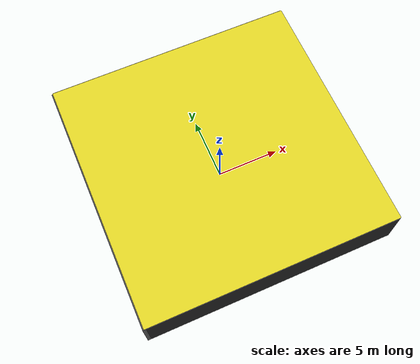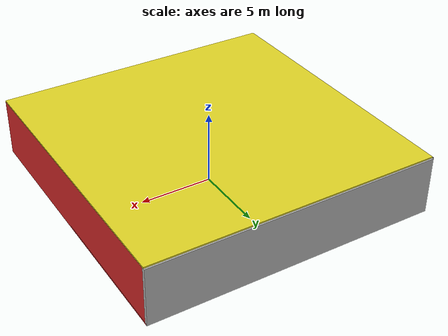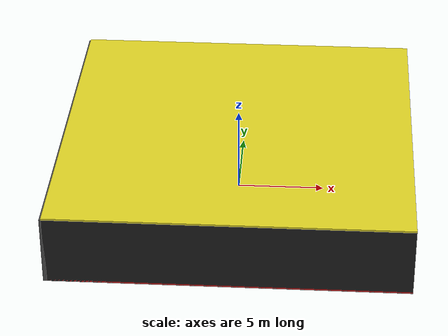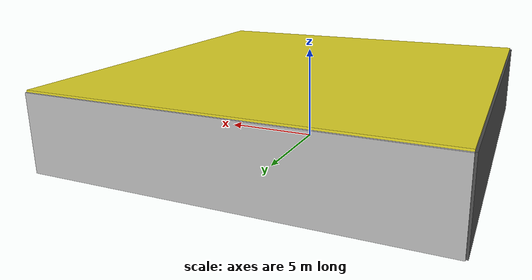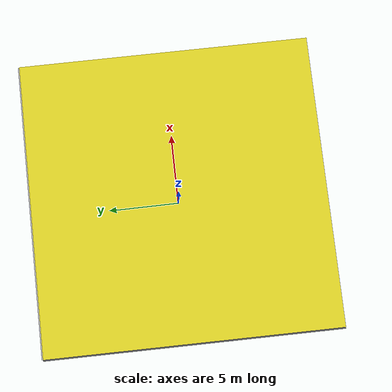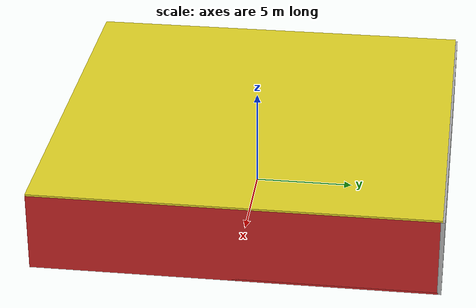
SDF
<sdf version="1.4">
 <world name="default">
  <physics type="ode">
   <max_step_size>0.001</max_step_size>
   <real_time_factor>1</real_time_factor>
   <real_time_update_rate>1000</real_time_update_rate>
   <gravity>0 0 -9.8</gravity>
  </physics>
  <scene><ambient>0.4 0.4 0.4 1</ambient><background>0.7 0.7 0.7 1</background><shadows>1</shadows></scene>
  <model name="Surrounding">
   <static>1</static>
   <link name="Ceiling">
    <collision name="Ceiling_Collision"><geometry><box><size>20 20 0.1</size></box></geometry></collision>
    <visual name="Ceiling_Visual">
     <geometry><box><size>20 20 0.1</size></box></geometry>
     <material>
      <script><uri>file://media/materials/scripts/gazebo.material</uri><name>Gazebo/Yellow</name></script>
     </material>
    </visual>
    <pose>0 0 4.05 0 0 0</pose>
   </link>
   <link name="Wall_South">
    <collision name="Wall_South_Collision">
     <geometry><box><size>20 0 4</size></box></geometry>
     <pose>0 0 2 0 -0 0</pose>
    </collision>
    <visual name="Wall_South_Visual">
     <pose>0 0 2 0 -0 0</pose>
     <geometry><box><size>20 0 4</size></box></geometry>
     <material>
      <script><uri>file://media/materials/scripts/gazebo.material</uri><name>Gazebo/FlatBlack</name></script>
     </material>
    </visual>
    <velocity_decay><linear>0</linear><angular>0</angular></velocity_decay>
    <pose>0 -10 0 0 -0 0</pose>
   </link>
   <link name="Wall_East">
    <collision name="Wall_21_Collision">
     <geometry><box><size>20 0 4</size></box></geometry>
     <pose>0 0 2 0 -0 0</pose>
    </collision>
    <visual name="Wall_21_Visual">
     <pose>0 0 2 0 -0 0</pose>
     <geometry><box><size>20 0 4</size></box></geometry>
     <material>
      <script><uri>file://media/materials/scripts/gazebo.material</uri><name>Gazebo/RedBright</name></script>
     </material>
    </visual>
    <velocity_decay><linear>0</linear><angular>0</angular></velocity_decay>
    <pose>10 0 0 0 -0 1.5708</pose>
   </link>
   <link name="Wall_North">
    <collision name="Wall_22_Collision">
     <geometry><box><size>20 0.2 4</size></box></geometry>
     <pose>0 0 2 0 -0 0</pose>
    </collision>
    <visual name="Wall_22_Visual">
     <pose>0 0 2 0 -0 0</pose>
     <geometry><box><size>20 0.2 4</size></box></geometry>
     <material>
      <script><uri>file://media/materials/scripts/gazebo.material</uri><name>Gazebo/JointAnchor</name></script>
     </material>
    </visual>
    <velocity_decay><linear>0</linear><angular>0</angular></velocity_decay>
    <pose>0 10 0 0 -0 0</pose>
   </link>
   <link name="Wall_West">
    <collision name="Wall_23_Collision">
     <geometry><box><size>20 0.2 4</size></box></geometry>
     <pose>0 0 2 0 -0 0</pose>
    </collision>
    <visual name="Wall_23_Visual">
     <pose>0 0 2 0 -0 0</pose>
     <geometry><box><size>20 0.2 4</size></box></geometry>
     <material>
      <script><uri>file://media/materials/scripts/gazebo.material</uri><name>Gazebo/Road</name></script>
     </material>
    </visual>
    <velocity_decay><linear>0</linear><angular>0</angular></velocity_decay>
    <pose>-10 0 0 0 0 -1.5708</pose>
   </link>
   <link name="Ground_link">
    <collision name="collision">
     <pose>0 0 .05 0 -0 0</pose>
     <geometry><box><size>20 20 0.1</size></box></geometry>
    </collision>
    <visual name="visual">
     <pose>0 0 .05 0 -0 0</pose>
     <geometry><box><size>20 20 0.1</size></box></geometry>
     <material>
      <script><uri>file://media/materials/scripts/gazebo.material</uri><name>Gazebo/Red</name></script>
     </material>
    </visual>
   </link>
   <static>1</static>
  </model>
  <spherical_coordinates>
   <surface_model>EARTH_WGS84</surface_model>
   <latitude_deg>0</latitude_deg>
   <longitude_deg>0</longitude_deg>
   <elevation>0</elevation>
   <heading_deg>0</heading_deg>
  </spherical_coordinates>
  <light name="lightball_0" type="diffuse">
   <diffuse>0.8 0.8 0.8 1</diffuse>
   <specular>0.2 0.2 0.2 1</specular>
   <attenuation>
    <range>100</range>
    <constant>0.7</constant>
    <linear>0.01</linear>
    <quadratic>0.001</quadratic>
   </attenuation>
   <direction>-0.5 0.1 -0.9</direction>
   <pose>-5.08777576495 1.84583847885 2.51970025043 0 0 0</pose>
  </light>
  <light name="lightball_1" type="diffuse">
   <diffuse>0.8 0.8 0.8 1</diffuse>
   <specular>0.2 0.2 0.2 1</specular>
   <attenuation>
    <range>100</range>
    <constant>0.7</constant>
    <linear>0.01</linear>
    <quadratic>0.001</quadratic>
   </attenuation>
   <direction>-0.5 0.1 -0.9</direction>
   <pose>-2.96211661336 4.16495914184 3.43771000652 0 0 0</pose>
  </light>
  <light name="lightball_2" type="diffuse">
   <diffuse>0.8 0.8 0.8 1</diffuse>
   <specular>0.2 0.2 0.2 1</specular>
   <attenuation>
    <range>100</range>
    <constant>0.7</constant>
    <linear>0.01</linear>
    <quadratic>0.001</quadratic>
   </attenuation>
   <direction>-0.5 0.1 -0.9</direction>
   <pose>2.98452740222 -6.41932704813 3.02569188521 0 0 0</pose>
  </light>
  <light name="lightball_3" type="diffuse">
   <diffuse>0.8 0.8 0.8 1</diffuse>
   <specular>0.2 0.2 0.2 1</specular>
   <attenuation>
    <range>100</range>
    <constant>0.7</constant>
    <linear>0.01</linear>
    <quadratic>0.001</quadratic>
   </attenuation>
   <direction>-0.5 0.1 -0.9</direction>
   <pose>-2.87529132003 0.0868693881432 0.620828661108 0 0 0</pose>
  </light>
  <light name="lightball_4" type="diffuse">
   <diffuse>0.8 0.8 0.8 1</diffuse>
   <specular>0.2 0.2 0.2 1</specular>
   <attenuation>
    <range>100</range>
    <constant>0.7</constant>
    <linear>0.01</linear>
    <quadratic>0.001</quadratic>
   </attenuation>
   <direction>-0.5 0.1 -0.9</direction>
   <pose>-3.23132581279 0.135516774251 2.69697481347 0 0 0</pose>
  </light>
  <light name="lightball_5" type="diffuse">
   <diffuse>0.8 0.8 0.8 1</diffuse>
   <specular>0.2 0.2 0.2 1</specular>
   <attenuation>
    <range>100</range>
    <constant>0.7</constant>
    <linear>0.01</linear>
    <quadratic>0.001</quadratic>
   </attenuation>
   <direction>-0.5 0.1 -0.9</direction>
   <pose>9.17990183852 -7.99613836284 3.36287585434 0 0 0</pose>
  </light>
  <light name="lightball_6" type="diffuse">
   <diffuse>0.8 0.8 0.8 1</diffuse>
   <specular>0.2 0.2 0.2 1</specular>
   <attenuation>
    <range>100</range>
    <constant>0.7</constant>
    <linear>0.01</linear>
    <quadratic>0.001</quadratic>
   </attenuation>
   <direction>-0.5 0.1 -0.9</direction>
   <pose>-2.10564369648 -6.2631642229 1.85232363281 0 0 0</pose>
  </light>
  <light name="lightball_7" type="diffuse">
   <diffuse>0.8 0.8 0.8 1</diffuse>
   <specular>0.2 0.2 0.2 1</specular>
   <attenuation>
    <range>100</range>
    <constant>0.7</constant>
    <linear>0.01</linear>
    <quadratic>0.001</quadratic>
   </attenuation>
   <direction>-0.5 0.1 -0.9</direction>
   <pose>5.01463209206 -2.36069663446 3.80232524236 0 0 0</pose>
  </light>
  <include><uri>model://table</uri><pose>1.40119080468 -4.30908099802 0 0 0 3.01068939851</pose></include>
  <include>
   <uri>model://textured_shapes</uri>
   <pose>7.20221446271 1.36286726733 0 0 0 2.52302283052</pose>
  </include>
 </world>
</sdf>

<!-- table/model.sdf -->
<sdf version="1.5">
  <model name="table">
    <static>true</static>
    <link name="link">
      <collision name="surface">
        <pose>0 0 1.0 0 0 0</pose>
        <geometry>
          <box>
            <size>1.5 0.8 0.03</size>
          </box>
        </geometry>
        <surface>
          <friction>
            <ode>
              <mu>0.6</mu>
              <mu2>0.6</mu2>
            </ode>
          </friction>
        </surface>
      </collision>
      <visual name="visual1">
        <pose>0 0 1.0 0 0 0</pose>
        <geometry>
          <box>
            <size>1.5 0.8 0.03</size>
          </box>
        </geometry>
        <material>
          <script>
            <uri>model://media/materials/scripts/gazebo.material</uri>
            <name>Gazebo/Wood</name>
          </script>
        </material>
      </visual>
      <collision name="front_left_leg">
        <pose>0.68 0.38 0.5 0 0 0</pose>
        <geometry>
          <cylinder>
            <radius>0.02</radius>
            <length>1.0</length>
          </cylinder>
        </geometry>
      </collision>
      <visual name="front_left_leg">
        <pose>0.68 0.38 0.5 0 0 0</pose>
        <geometry>
          <cylinder>
            <radius>0.02</radius>
            <length>1.0</length>
          </cylinder>
        </geometry>
        <material>
          <script>
            <uri>model://media/materials/scripts/gazebo.material</uri>
            <name>Gazebo/Grey</name>
          </script>
        </material>
      </visual>
      <collision name="front_right_leg">
        <pose>0.68 -0.38 0.5 0 0 0</pose>
        <geometry>
          <cylinder>
            <radius>0.02</radius>
            <length>1.0</length>
          </cylinder>
        </geometry>
      </collision>
      <visual name="front_right_leg">
        <pose>0.68 -0.38 0.5 0 0 0</pose>
        <geometry>
          <cylinder>
            <radius>0.02</radius>
            <length>1.0</length>
          </cylinder>
        </geometry>
        <material>
          <script>
            <uri>model://media/materials/scripts/gazebo.material</uri>
            <name>Gazebo/Grey</name>
          </script>
        </material>
      </visual>
      <collision name="back_right_leg">
        <pose>-0.68 -0.38 0.5 0 0 0</pose>
        <geometry>
          <cylinder>
            <radius>0.02</radius>
            <length>1.0</length>
          </cylinder>
        </geometry>
      </collision>
      <visual name="back_right_leg">
        <pose>-0.68 -0.38 0.5 0 0 0</pose>
        <geometry>
          <cylinder>
            <radius>0.02</radius>
            <length>1.0</length>
          </cylinder>
        </geometry>
        <material>
          <script>
            <uri>model://media/materials/scripts/gazebo.material</uri>
            <name>Gazebo/Grey</name>
          </script>
        </material>
      </visual>
      <collision name="back_left_leg">
        <pose>-0.68 0.38 0.5 0 0 0</pose>
        <geometry>
          <cylinder>
            <radius>0.02</radius>
            <length>1.0</length>
          </cylinder>
        </geometry>
      </collision>
      <visual name="back_left_leg">
        <pose>-0.68 0.38 0.5 0 0 0</pose>
        <geometry>
          <cylinder>
            <radius>0.02</radius>
            <length>1.0</length>
          </cylinder>
        </geometry>
        <material>
          <script>
            <uri>model://media/materials/scripts/gazebo.material</uri>
            <name>Gazebo/Grey</name>
          </script>
        </material>
      </visual>
    </link>
  </model>
</sdf>

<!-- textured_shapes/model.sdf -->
<sdf version="1.6">
  <model name="textured_shapes">
    <pose>0 0 0.5 0 0 0</pose>
    <link name="box">
      <pose>0 -1.5 0 0 0 0</pose>
      <collision name="collision">
        <geometry>
          <box>
            <size>1 1 1</size>
          </box>
        </geometry>
      </collision>
      <visual name="visual">
        <geometry>
          <box>
            <size>1 1 1</size>
          </box>
        </geometry>
        <material>
          <script>
            <uri>model://../model_source/models/textured_shapes/materials/scripts</uri>
            <uri>model://../model_source/models/textured_shapes/materials/textures</uri>
            <name>TexturedShape/Squares</name>
          </script>
        </material>
      </visual>
    </link>
    <link name="sphere">
      <collision name="collision">
        <geometry>
          <sphere>
            <radius>0.5</radius>
          </sphere>
        </geometry>
      </collision>
      <visual name="visual">
        <geometry>
          <sphere>
            <radius>0.5</radius>
          </sphere>
        </geometry>
        <material>
          <script>
            <uri>model://../model_source/models/textured_shapes/materials/scripts</uri>
            <uri>model://../model_source/models/textured_shapes/materials/textures</uri>
            <name>TexturedShape/Squares</name>
          </script>
        </material>
      </visual>
    </link>
    <link name="cylinder">
      <pose>0 1.5 0 0 0 0</pose>
      <collision name="collision">
        <geometry>
          <cylinder>
            <radius>0.5</radius>
            <length>1</length>
          </cylinder>
        </geometry>
      </collision>
      <visual name="visual">
        <geometry>
          <cylinder>
            <radius>0.5</radius>
            <length>1</length>
          </cylinder>
        </geometry>
        <material>
          <script>
            <uri>model://../model_source/models/textured_shapes/materials/scripts</uri>
            <uri>model://../model_source/models/textured_shapes/materials/textures</uri>
            <name>TexturedShape/Squares</name>
          </script>
        </material>
      </visual>
    </link>
  </model>
</sdf>
